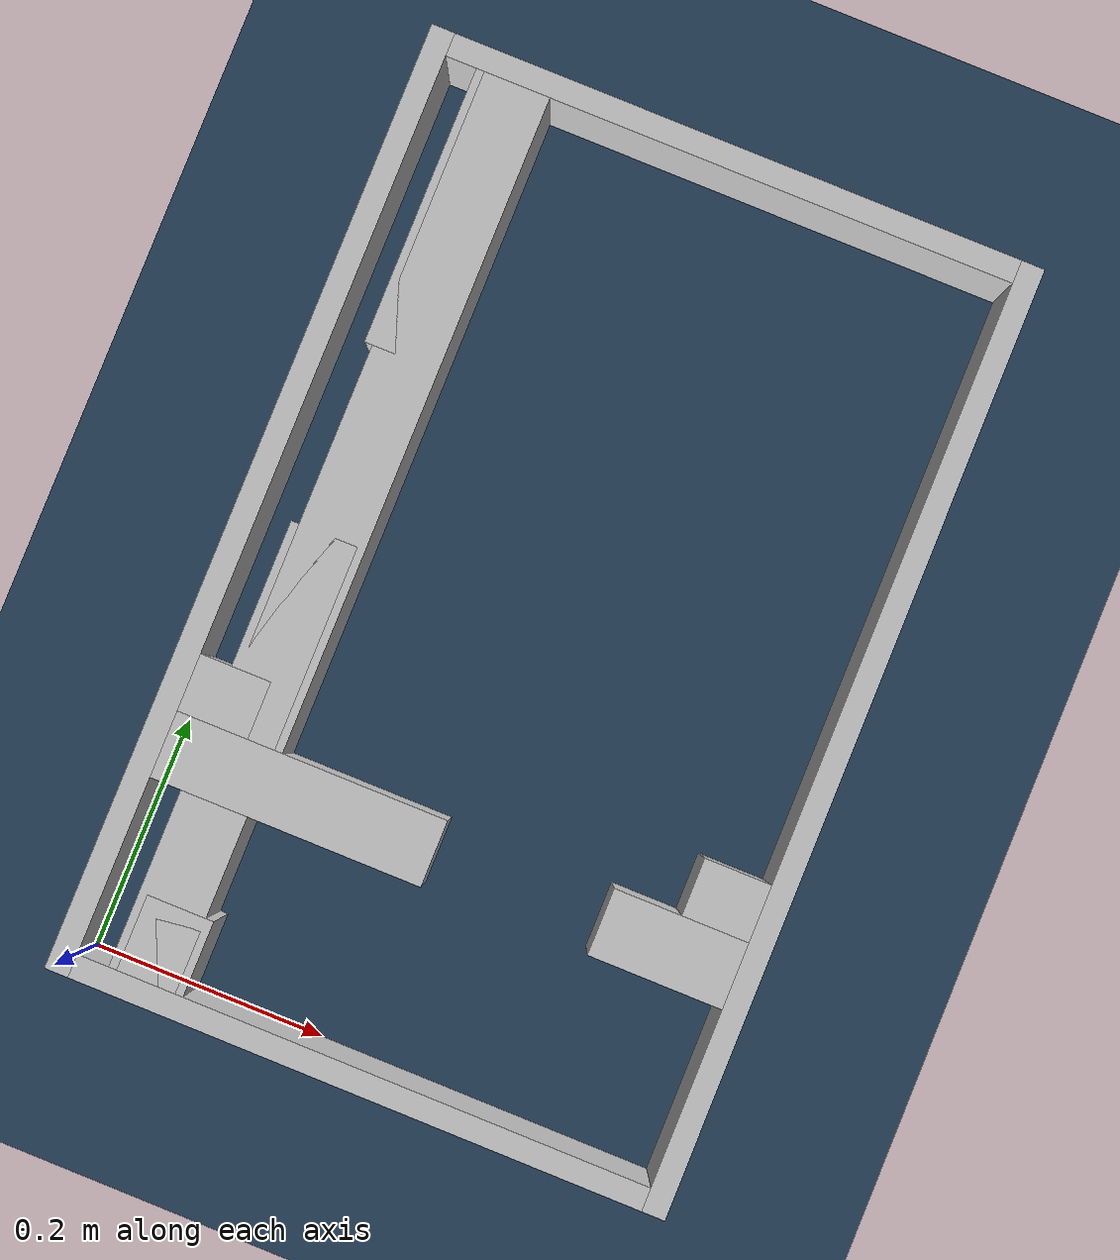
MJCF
<?xml version="1.0" ?>
<mujoco model="generated_real_template">
  <compiler angle="degree"/>
  <option timestep="0.002" integrator="implicitfast" iterations="100" cone="elliptic"/>
  <default>
    <geom density="1"/>
  </default>
  <asset>
    <texture builtin="gradient" height="3072" rgb1="0.3 0.5 0.7" rgb2="0 0 0" type="skybox" width="512"/>
    <texture builtin="checker" height="300" mark="edge" markrgb="0.8 0.8 0.8" name="groundplane" rgb1="0.2 0.3 0.4" rgb2="0.1 0.2 0.3" type="2d" width="300"/>
    <material name="groundplane" reflectance="0.2" texrepeat="5 5" texture="groundplane" texuniform="true"/>
  </asset>
  <worldbody>
    <light dir="0 0 -1" directional="true" pos="0 0 1.5"/>
    <geom name="floor" type="plane" condim="4" friction="0.5 0.005 0.001" material="groundplane" size="0 0 0.05"/>
    <body name="walls">
      <geom name="wall_boundary_left" type="box" condim="4" friction="1.0 0.005 0.0001" rgba="0.8 0.8 0.8 1" pos="-0.010000 0.387500 0.050000" euler="0 0 0.000000" size="0.010000 0.407500 0.050000"/>
      <geom name="wall_boundary_right" type="box" condim="4" friction="1.0 0.005 0.0001" rgba="0.8 0.8 0.8 1" pos="0.500000 0.387500 0.050000" euler="0 0 0.000000" size="0.010000 0.407500 0.050000"/>
      <geom name="wall_boundary_bottom" type="box" condim="4" friction="1.0 0.005 0.0001" rgba="0.8 0.8 0.8 1" pos="0.245000 -0.010000 0.050000" euler="0 0 0.000000" size="0.245000 0.010000 0.050000"/>
      <geom name="wall_boundary_top" type="box" condim="4" friction="1.0 0.005 0.0001" rgba="0.8 0.8 0.8 1" pos="0.245000 0.785000 0.050000" euler="0 0 0.000000" size="0.245000 0.010000 0.050000"/>
      <geom name="wall_inner_1_1" type="box" condim="4" friction="1.0 0.005 0.0001" rgba="0.8 0.8 0.8 1" pos="0.062039 0.032079 0.050000" euler="0 0 90.000000" size="0.032079 0.028500 0.050000"/>
      <geom name="wall_inner_1_2" type="box" condim="4" friction="1.0 0.005 0.0001" rgba="0.8 0.8 0.8 1" pos="0.062039 0.486785 0.050000" euler="0 0 90.000000" size="0.288215 0.028500 0.050000"/>
      <geom name="wall_inner_2_1" type="box" condim="4" friction="1.0 0.005 0.0001" rgba="0.8 0.8 0.8 1" pos="0.055226 0.191149 0.050000" euler="0 0 90.000000" size="0.191149 0.028500 0.050000"/>
      <geom name="wall_inner_2_2" type="box" condim="4" friction="1.0 0.005 0.0001" rgba="0.8 0.8 0.8 1" pos="0.055226 0.655961 0.050000" euler="0 0 90.000000" size="0.119039 0.028500 0.050000"/>
      <geom name="wall_inner_3_1" type="box" condim="4" friction="1.0 0.005 0.0001" rgba="0.8 0.8 0.8 1" pos="0.030267 0.228517 0.050000" euler="0 0 0.000000" size="0.030267 0.028500 0.050000"/>
      <geom name="wall_inner_3_2" type="box" condim="4" friction="1.0 0.005 0.0001" rgba="0.8 0.8 0.8 1" pos="0.461340 0.228517 0.050000" euler="0 0 0.000000" size="0.028660 0.028500 0.050000"/>
      <geom name="wall_inner_4_1" type="box" condim="4" friction="1.0 0.005 0.0001" rgba="0.8 0.8 0.8 1" pos="0.116171 0.179370 0.050000" euler="0 0 0.000000" size="0.116171 0.028500 0.050000"/>
      <geom name="wall_inner_4_2" type="box" condim="4" friction="1.0 0.005 0.0001" rgba="0.8 0.8 0.8 1" pos="0.432507 0.179370 0.050000" euler="0 0 0.000000" size="0.057493 0.028500 0.050000"/>
    </body>
  </worldbody>
</mujoco>
